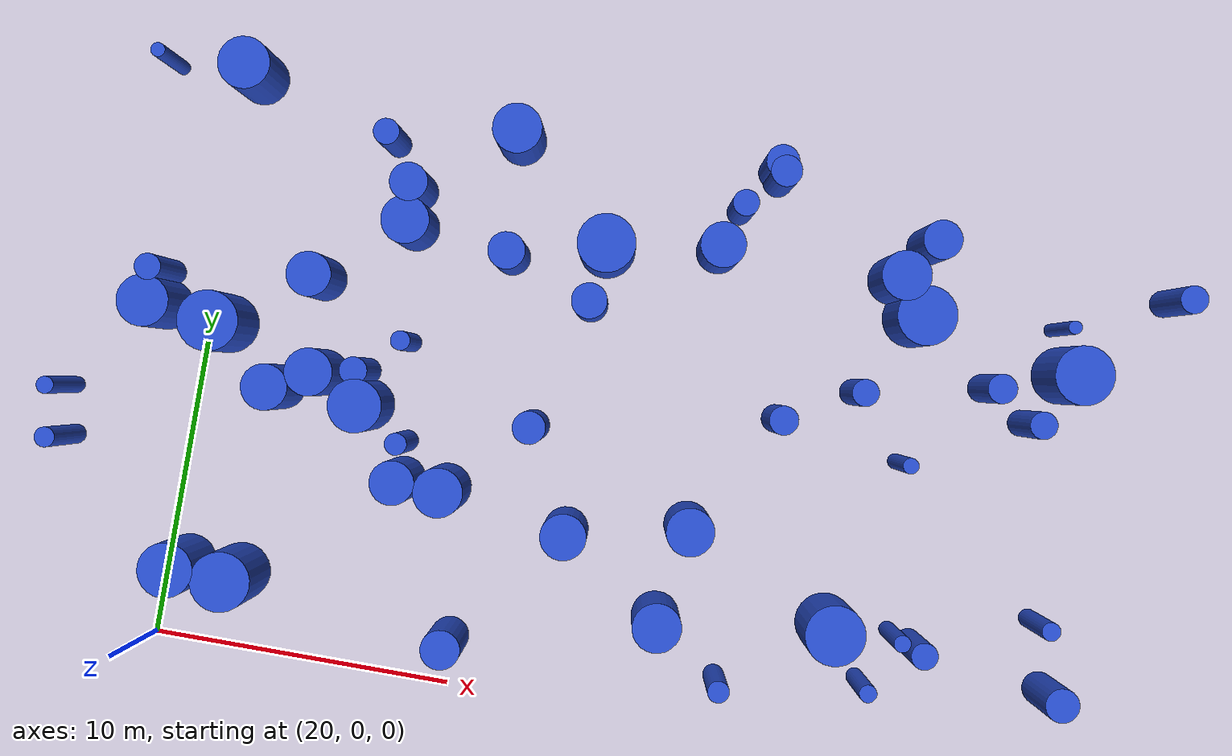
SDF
<sdf version="1.7">
 <world name="default">
  <model name="6">
   <static>1</static>
   <link name="link">
    <inertial>
     <mass>2</mass>
     <inertia>
      <ixx>6.03936</ixx>
      <ixy>0</ixy>
      <ixz>0</ixz>
      <iyy>6.03936</iyy>
      <iyz>0</iyz>
      <izz>0.0787145</izz>
     </inertia>
    </inertial>
    <collision name="collision">
     <geometry><cylinder><length>6</length><radius>0.280561</radius></cylinder></geometry>
     <surface><contact><collide_without_contact>1</collide_without_contact></contact></surface>
    </collision>
    <visual name="visual">
     <geometry><cylinder><length>6</length><radius>0.280561</radius></cylinder></geometry>
     <material>
      <script><uri>file://media/materials/scripts/gazebo.material</uri><name>Gazebo/Blue</name></script>
     </material>
    </visual>
    <gravity>0</gravity>
   </link>
   <pose>44.4541 4.37326 3 0 -0 0</pose>
  </model>
  <model name="7">
   <static>1</static>
   <link name="link">
    <inertial>
     <mass>2</mass>
     <inertia><ixx>6.47364</ixx><ixy>0</ixy><ixz>0</ixz><iyy>6.47364</iyy><iyz>0</iyz><izz>0.947284</izz></inertia>
    </inertial>
    <collision name="collision">
     <geometry><cylinder><length>6</length><radius>0.973285</radius></cylinder></geometry>
     <surface><contact><collide_without_contact>1</collide_without_contact></contact></surface>
    </collision>
    <visual name="visual">
     <geometry><cylinder><length>6</length><radius>0.973285</radius></cylinder></geometry>
     <material>
      <script><uri>file://media/materials/scripts/gazebo.material</uri><name>Gazebo/Blue</name></script>
     </material>
    </visual>
    <gravity>0</gravity>
   </link>
   <pose>48.7457 13.9013 3 0 -0 0</pose>
  </model>
  <model name="11">
   <static>1</static>
   <link name="link">
    <inertial>
     <mass>2</mass>
     <inertia><ixx>6.40175</ixx><ixy>0</ixy><ixz>0</ixz><iyy>6.40175</iyy><iyz>0</iyz><izz>0.803492</izz></inertia>
    </inertial>
    <collision name="collision">
     <geometry><cylinder><length>6</length><radius>0.896377</radius></cylinder></geometry>
     <surface><contact><collide_without_contact>1</collide_without_contact></contact></surface>
    </collision>
    <visual name="visual">
     <geometry><cylinder><length>6</length><radius>0.896377</radius></cylinder></geometry>
     <material>
      <script><uri>file://media/materials/scripts/gazebo.material</uri><name>Gazebo/Blue</name></script>
     </material>
    </visual>
    <gravity>0</gravity>
   </link>
   <pose>20.6606 2.5794 3 0 -0 0</pose>
  </model>
  <model name="13">
   <static>1</static>
   <link name="link">
    <inertial>
     <mass>2</mass>
     <inertia><ixx>6.10399</ixx><ixy>0</ixy><ixz>0</ixz><iyy>6.10399</iyy><iyz>0</iyz><izz>0.207976</izz></inertia>
    </inertial>
    <collision name="collision">
     <geometry><cylinder><length>6</length><radius>0.456044</radius></cylinder></geometry>
     <surface><contact><collide_without_contact>1</collide_without_contact></contact></surface>
    </collision>
    <visual name="visual">
     <geometry><cylinder><length>6</length><radius>0.456044</radius></cylinder></geometry>
     <material>
      <script><uri>file://media/materials/scripts/gazebo.material</uri><name>Gazebo/Blue</name></script>
     </material>
    </visual>
    <gravity>0</gravity>
   </link>
   <pose>51.7868 16.9186 3 0 -0 0</pose>
  </model>
  <model name="25">
   <static>1</static>
   <link name="link">
    <inertial>
     <mass>2</mass>
     <inertia><ixx>6.38374</ixx><ixy>0</ixy><ixz>0</ixz><iyy>6.38374</iyy><iyz>0</iyz><izz>0.767485</izz></inertia>
    </inertial>
    <collision name="collision">
     <geometry><cylinder><length>6</length><radius>0.876062</radius></cylinder></geometry>
     <surface><contact><collide_without_contact>1</collide_without_contact></contact></surface>
    </collision>
    <visual name="visual">
     <geometry><cylinder><length>6</length><radius>0.876062</radius></cylinder></geometry>
     <material>
      <script><uri>file://media/materials/scripts/gazebo.material</uri><name>Gazebo/Blue</name></script>
     </material>
    </visual>
    <gravity>0</gravity>
   </link>
   <pose>25.7538 8.85397 3 0 -0 0</pose>
  </model>
  <model name="27">
   <static>1</static>
   <link name="link">
    <inertial>
     <mass>2</mass>
     <inertia>
      <ixx>6.03934</ixx>
      <ixy>0</ixy>
      <ixz>0</ixz>
      <iyy>6.03934</iyy>
      <iyz>0</iyz>
      <izz>0.0786724</izz>
     </inertia>
    </inertial>
    <collision name="collision">
     <geometry><cylinder><length>6</length><radius>0.280486</radius></cylinder></geometry>
     <surface><contact><collide_without_contact>1</collide_without_contact></contact></surface>
    </collision>
    <visual name="visual">
     <geometry><cylinder><length>6</length><radius>0.280486</radius></cylinder></geometry>
     <material>
      <script><uri>file://media/materials/scripts/gazebo.material</uri><name>Gazebo/Blue</name></script>
     </material>
    </visual>
    <gravity>0</gravity>
   </link>
   <pose>15.8342 7.79594 3 0 -0 0</pose>
  </model>
  <model name="30">
   <static>1</static>
   <link name="link">
    <inertial>
     <mass>2</mass>
     <inertia><ixx>6.13157</ixx><ixy>0</ixy><ixz>0</ixz><iyy>6.13157</iyy><iyz>0</iyz><izz>0.263136</izz></inertia>
    </inertial>
    <collision name="collision">
     <geometry><cylinder><length>6</length><radius>0.512968</radius></cylinder></geometry>
     <surface><contact><collide_without_contact>1</collide_without_contact></contact></surface>
    </collision>
    <visual name="visual">
     <geometry><cylinder><length>6</length><radius>0.512968</radius></cylinder></geometry>
     <material>
      <script><uri>file://media/materials/scripts/gazebo.material</uri><name>Gazebo/Blue</name></script>
     </material>
    </visual>
    <gravity>0</gravity>
   </link>
   <pose>38.1472 18.7277 3 0 -0 0</pose>
  </model>
  <model name="43">
   <static>1</static>
   <link name="link">
    <inertial>
     <mass>2</mass>
     <inertia><ixx>6.09019</ixx><ixy>0</ixy><ixz>0</ixz><iyy>6.09019</iyy><iyz>0</iyz><izz>0.180376</izz></inertia>
    </inertial>
    <collision name="collision">
     <geometry><cylinder><length>6</length><radius>0.424707</radius></cylinder></geometry>
     <surface><contact><collide_without_contact>1</collide_without_contact></contact></surface>
    </collision>
    <visual name="visual">
     <geometry><cylinder><length>6</length><radius>0.424707</radius></cylinder></geometry>
     <material>
      <script><uri>file://media/materials/scripts/gazebo.material</uri><name>Gazebo/Blue</name></script>
     </material>
    </visual>
    <gravity>0</gravity>
   </link>
   <pose>25.2338 17.7403 3 0 -0 0</pose>
  </model>
  <model name="44">
   <static>1</static>
   <link name="link">
    <inertial>
     <mass>2</mass>
     <inertia><ixx>6.09258</ixx><ixy>0</ixy><ixz>0</ixz><iyy>6.09258</iyy><iyz>0</iyz><izz>0.18516</izz></inertia>
    </inertial>
    <collision name="collision">
     <geometry><cylinder><length>6</length><radius>0.430302</radius></cylinder></geometry>
     <surface><contact><collide_without_contact>1</collide_without_contact></contact></surface>
    </collision>
    <visual name="visual">
     <geometry><cylinder><length>6</length><radius>0.430302</radius></cylinder></geometry>
     <material>
      <script><uri>file://media/materials/scripts/gazebo.material</uri><name>Gazebo/Blue</name></script>
     </material>
    </visual>
    <gravity>0</gravity>
   </link>
   <pose>37.0413 17.4916 3 0 -0 0</pose>
  </model>
  <model name="52">
   <static>1</static>
   <link name="link">
    <inertial>
     <mass>2</mass>
     <inertia><ixx>6.10109</ixx><ixy>0</ixy><ixz>0</ixz><iyy>6.10109</iyy><iyz>0</iyz><izz>0.202182</izz></inertia>
    </inertial>
    <collision name="collision">
     <geometry><cylinder><length>6</length><radius>0.449647</radius></cylinder></geometry>
     <surface><contact><collide_without_contact>1</collide_without_contact></contact></surface>
    </collision>
    <visual name="visual">
     <geometry><cylinder><length>6</length><radius>0.449647</radius></cylinder></geometry>
     <material>
      <script><uri>file://media/materials/scripts/gazebo.material</uri><name>Gazebo/Blue</name></script>
     </material>
    </visual>
    <gravity>0</gravity>
   </link>
   <pose>47.719 12.0839 3 0 -0 0</pose>
  </model>
  <model name="53">
   <static>1</static>
   <link name="link">
    <inertial>
     <mass>2</mass>
     <inertia><ixx>6.36119</ixx><ixy>0</ixy><ixz>0</ixz><iyy>6.36119</iyy><iyz>0</iyz><izz>0.722384</izz></inertia>
    </inertial>
    <collision name="collision">
     <geometry><cylinder><length>6</length><radius>0.849932</radius></cylinder></geometry>
     <surface><contact><collide_without_contact>1</collide_without_contact></contact></surface>
    </collision>
    <visual name="visual">
     <geometry><cylinder><length>6</length><radius>0.849932</radius></cylinder></geometry>
     <material>
      <script><uri>file://media/materials/scripts/gazebo.material</uri><name>Gazebo/Blue</name></script>
     </material>
    </visual>
    <gravity>0</gravity>
   </link>
   <pose>20.3305 19.1279 3 0 -0 0</pose>
  </model>
  <model name="68">
   <static>1</static>
   <link name="link">
    <inertial>
     <mass>2</mass>
     <inertia>
      <ixx>6.02714</ixx>
      <ixy>0</ixy>
      <ixz>0</ixz>
      <iyy>6.02714</iyy>
      <iyz>0</iyz>
      <izz>0.0542715</izz>
     </inertia>
    </inertial>
    <collision name="collision">
     <geometry><cylinder><length>6</length><radius>0.232962</radius></cylinder></geometry>
     <surface><contact><collide_without_contact>1</collide_without_contact></contact></surface>
    </collision>
    <visual name="visual">
     <geometry><cylinder><length>6</length><radius>0.232962</radius></cylinder></geometry>
     <material>
      <script><uri>file://media/materials/scripts/gazebo.material</uri><name>Gazebo/Blue</name></script>
     </material>
    </visual>
    <gravity>0</gravity>
   </link>
   <pose>17.5427 19.052 3 0 -0 0</pose>
  </model>
  <model name="74">
   <static>1</static>
   <link name="link">
    <inertial>
     <mass>2</mass>
     <inertia><ixx>6.14646</ixx><ixy>0</ixy><ixz>0</ixz><iyy>6.14646</iyy><iyz>0</iyz><izz>0.292928</izz></inertia>
    </inertial>
    <collision name="collision">
     <geometry><cylinder><length>6</length><radius>0.541228</radius></cylinder></geometry>
     <surface><contact><collide_without_contact>1</collide_without_contact></contact></surface>
    </collision>
    <visual name="visual">
     <geometry><cylinder><length>6</length><radius>0.541228</radius></cylinder></geometry>
     <material>
      <script><uri>file://media/materials/scripts/gazebo.material</uri><name>Gazebo/Blue</name></script>
     </material>
    </visual>
    <gravity>0</gravity>
   </link>
   <pose>31.4047 9.13593 3 0 -0 0</pose>
  </model>
  <model name="78">
   <static>1</static>
   <link name="link">
    <inertial>
     <mass>2</mass>
     <inertia><ixx>6.15615</ixx><ixy>0</ixy><ixz>0</ixz><iyy>6.15615</iyy><iyz>0</iyz><izz>0.312297</izz></inertia>
    </inertial>
    <collision name="collision">
     <geometry><cylinder><length>6</length><radius>0.558835</radius></cylinder></geometry>
     <surface><contact><collide_without_contact>1</collide_without_contact></contact></surface>
    </collision>
    <visual name="visual">
     <geometry><cylinder><length>6</length><radius>0.558835</radius></cylinder></geometry>
     <material>
      <script><uri>file://media/materials/scripts/gazebo.material</uri><name>Gazebo/Blue</name></script>
     </material>
    </visual>
    <gravity>0</gravity>
   </link>
   <pose>49.8746 3.30067 3 0 -0 0</pose>
  </model>
  <model name="79">
   <static>1</static>
   <link name="link">
    <inertial>
     <mass>2</mass>
     <inertia><ixx>6.14495</ixx><ixy>0</ixy><ixz>0</ixz><iyy>6.14495</iyy><iyz>0</iyz><izz>0.289907</izz></inertia>
    </inertial>
    <collision name="collision">
     <geometry><cylinder><length>6</length><radius>0.53843</radius></cylinder></geometry>
     <surface><contact><collide_without_contact>1</collide_without_contact></contact></surface>
    </collision>
    <visual name="visual">
     <geometry><cylinder><length>6</length><radius>0.53843</radius></cylinder></geometry>
     <material>
      <script><uri>file://media/materials/scripts/gazebo.material</uri><name>Gazebo/Blue</name></script>
     </material>
    </visual>
    <gravity>0</gravity>
   </link>
   <pose>37.9749 19.0124 3 0 -0 0</pose>
  </model>
  <model name="84">
   <static>1</static>
   <link name="link">
    <inertial>
     <mass>2</mass>
     <inertia><ixx>6.06422</ixx><ixy>0</ixy><ixz>0</ixz><iyy>6.06422</iyy><iyz>0</iyz><izz>0.128433</izz></inertia>
    </inertial>
    <collision name="collision">
     <geometry><cylinder><length>6</length><radius>0.358376</radius></cylinder></geometry>
     <surface><contact><collide_without_contact>1</collide_without_contact></contact></surface>
    </collision>
    <visual name="visual">
     <geometry><cylinder><length>6</length><radius>0.358376</radius></cylinder></geometry>
     <material>
      <script><uri>file://media/materials/scripts/gazebo.material</uri><name>Gazebo/Blue</name></script>
     </material>
    </visual>
    <gravity>0</gravity>
   </link>
   <pose>38.8906 1.8224 3 0 -0 0</pose>
  </model>
  <model name="90">
   <static>1</static>
   <link name="link">
    <inertial>
     <mass>2</mass>
     <inertia><ixx>6.05078</ixx><ixy>0</ixy><ixz>0</ixz><iyy>6.05078</iyy><iyz>0</iyz><izz>0.101566</izz></inertia>
    </inertial>
    <collision name="collision">
     <geometry><cylinder><length>6</length><radius>0.318694</radius></cylinder></geometry>
     <surface><contact><collide_without_contact>1</collide_without_contact></contact></surface>
    </collision>
    <visual name="visual">
     <geometry><cylinder><length>6</length><radius>0.318694</radius></cylinder></geometry>
     <material>
      <script><uri>file://media/materials/scripts/gazebo.material</uri><name>Gazebo/Blue</name></script>
     </material>
    </visual>
    <gravity>0</gravity>
   </link>
   <pose>26.8432 11.1855 3 0 -0 0</pose>
  </model>
  <model name="94">
   <static>1</static>
   <link name="link">
    <inertial>
     <mass>2</mass>
     <inertia><ixx>6.05397</ixx><ixy>0</ixy><ixz>0</ixz><iyy>6.05397</iyy><iyz>0</iyz><izz>0.107946</izz></inertia>
    </inertial>
    <collision name="collision">
     <geometry><cylinder><length>6</length><radius>0.328552</radius></cylinder></geometry>
     <surface><contact><collide_without_contact>1</collide_without_contact></contact></surface>
    </collision>
    <visual name="visual">
     <geometry><cylinder><length>6</length><radius>0.328552</radius></cylinder></geometry>
     <material>
      <script><uri>file://media/materials/scripts/gazebo.material</uri><name>Gazebo/Blue</name></script>
     </material>
    </visual>
    <gravity>0</gravity>
   </link>
   <pose>16.1127 6.14078 3 0 -0 0</pose>
  </model>
  <model name="102">
   <static>1</static>
   <link name="link">
    <inertial>
     <mass>2</mass>
     <inertia><ixx>6.09779</ixx><ixy>0</ixy><ixz>0</ixz><iyy>6.09779</iyy><iyz>0</iyz><izz>0.19558</izz></inertia>
    </inertial>
    <collision name="collision">
     <geometry><cylinder><length>6</length><radius>0.442244</radius></cylinder></geometry>
     <surface><contact><collide_without_contact>1</collide_without_contact></contact></surface>
    </collision>
    <visual name="visual">
     <geometry><cylinder><length>6</length><radius>0.442244</radius></cylinder></geometry>
     <material>
      <script><uri>file://media/materials/scripts/gazebo.material</uri><name>Gazebo/Blue</name></script>
     </material>
    </visual>
    <gravity>0</gravity>
   </link>
   <pose>41.8886 12.1273 3 0 -0 0</pose>
  </model>
  <model name="106">
   <static>1</static>
   <link name="link">
    <inertial>
     <mass>2</mass>
     <inertia><ixx>6.48942</ixx><ixy>0</ixy><ixz>0</ixz><iyy>6.48942</iyy><iyz>0</iyz><izz>0.978843</izz></inertia>
    </inertial>
    <collision name="collision">
     <geometry><cylinder><length>6</length><radius>0.989365</radius></cylinder></geometry>
     <surface><contact><collide_without_contact>1</collide_without_contact></contact></surface>
    </collision>
    <visual name="visual">
     <geometry><cylinder><length>6</length><radius>0.989365</radius></cylinder></geometry>
     <material>
      <script><uri>file://media/materials/scripts/gazebo.material</uri><name>Gazebo/Blue</name></script>
     </material>
    </visual>
    <gravity>0</gravity>
   </link>
   <pose>42.2898 4.24967 3 0 -0 0</pose>
  </model>
  <model name="109">
   <static>1</static>
   <link name="link">
    <inertial>
     <mass>2</mass>
     <inertia><ixx>6.11392</ixx><ixy>0</ixy><ixz>0</ixz><iyy>6.11392</iyy><iyz>0</iyz><izz>0.227848</izz></inertia>
    </inertial>
    <collision name="collision">
     <geometry><cylinder><length>6</length><radius>0.477334</radius></cylinder></geometry>
     <surface><contact><collide_without_contact>1</collide_without_contact></contact></surface>
    </collision>
    <visual name="visual">
     <geometry><cylinder><length>6</length><radius>0.477334</radius></cylinder></geometry>
     <material>
      <script><uri>file://media/materials/scripts/gazebo.material</uri><name>Gazebo/Blue</name></script>
     </material>
    </visual>
    <gravity>0</gravity>
   </link>
   <pose>39.4527 10.7929 3 0 -0 0</pose>
  </model>
  <model name="120">
   <static>1</static>
   <link name="link">
    <inertial>
     <mass>2</mass>
     <inertia><ixx>6.04227</ixx><ixy>0</ixy><ixz>0</ixz><iyy>6.04227</iyy><iyz>0</iyz><izz>0.084539</izz></inertia>
    </inertial>
    <collision name="collision">
     <geometry><cylinder><length>6</length><radius>0.290756</radius></cylinder></geometry>
     <surface><contact><collide_without_contact>1</collide_without_contact></contact></surface>
    </collision>
    <visual name="visual">
     <geometry><cylinder><length>6</length><radius>0.290756</radius></cylinder></geometry>
     <material>
      <script><uri>file://media/materials/scripts/gazebo.material</uri><name>Gazebo/Blue</name></script>
     </material>
    </visual>
    <gravity>0</gravity>
   </link>
   <pose>43.6401 2.60213 3 0 -0 0</pose>
  </model>
  <model name="134">
   <static>1</static>
   <link name="link">
    <inertial>
     <mass>2</mass>
     <inertia><ixx>6.10247</ixx><ixy>0</ixy><ixz>0</ixz><iyy>6.10247</iyy><iyz>0</iyz><izz>0.204949</izz></inertia>
    </inertial>
    <collision name="collision">
     <geometry><cylinder><length>6</length><radius>0.452713</radius></cylinder></geometry>
     <surface><contact><collide_without_contact>1</collide_without_contact></contact></surface>
    </collision>
    <visual name="visual">
     <geometry><cylinder><length>6</length><radius>0.452713</radius></cylinder></geometry>
     <material>
      <script><uri>file://media/materials/scripts/gazebo.material</uri><name>Gazebo/Blue</name></script>
     </material>
    </visual>
    <gravity>0</gravity>
   </link>
   <pose>25.5167 9.96358 3 0 -0 0</pose>
  </model>
  <model name="149">
   <static>1</static>
   <link name="link">
    <inertial>
     <mass>2</mass>
     <inertia><ixx>6.32772</ixx><ixy>0</ixy><ixz>0</ixz><iyy>6.32772</iyy><iyz>0</iyz><izz>0.655446</izz></inertia>
    </inertial>
    <collision name="collision">
     <geometry><cylinder><length>6</length><radius>0.809596</radius></cylinder></geometry>
     <surface><contact><collide_without_contact>1</collide_without_contact></contact></surface>
    </collision>
    <visual name="visual">
     <geometry><cylinder><length>6</length><radius>0.809596</radius></cylinder></geometry>
     <material>
      <script><uri>file://media/materials/scripts/gazebo.material</uri><name>Gazebo/Blue</name></script>
     </material>
    </visual>
    <gravity>0</gravity>
   </link>
   <pose>29.3649 18.5769 3 0 -0 0</pose>
  </model>
  <model name="154">
   <static>1</static>
   <link name="link">
    <inertial>
     <mass>2</mass>
     <inertia><ixx>6.19478</ixx><ixy>0</ixy><ixz>0</ixz><iyy>6.19478</iyy><iyz>0</iyz><izz>0.389561</izz></inertia>
    </inertial>
    <collision name="collision">
     <geometry><cylinder><length>6</length><radius>0.624148</radius></cylinder></geometry>
     <surface><contact><collide_without_contact>1</collide_without_contact></contact></surface>
    </collision>
    <visual name="visual">
     <geometry><cylinder><length>6</length><radius>0.624148</radius></cylinder></geometry>
     <material>
      <script><uri>file://media/materials/scripts/gazebo.material</uri><name>Gazebo/Blue</name></script>
     </material>
    </visual>
    <gravity>0</gravity>
   </link>
   <pose>26.218 16.2749 3 0 -0 0</pose>
  </model>
  <model name="161">
   <static>1</static>
   <link name="link">
    <inertial>
     <mass>2</mass>
     <inertia><ixx>6.28558</ixx><ixy>0</ixy><ixz>0</ixz><iyy>6.28558</iyy><iyz>0</iyz><izz>0.571168</izz></inertia>
    </inertial>
    <collision name="collision">
     <geometry><cylinder><length>6</length><radius>0.755757</radius></cylinder></geometry>
     <surface><contact><collide_without_contact>1</collide_without_contact></contact></surface>
    </collision>
    <visual name="visual">
     <geometry><cylinder><length>6</length><radius>0.755757</radius></cylinder></geometry>
     <material>
      <script><uri>file://media/materials/scripts/gazebo.material</uri><name>Gazebo/Blue</name></script>
     </material>
    </visual>
    <gravity>0</gravity>
   </link>
   <pose>33.0988 5.85235 3 0 -0 0</pose>
  </model>
  <model name="163">
   <static>1</static>
   <link name="link">
    <inertial>
     <mass>2</mass>
     <inertia><ixx>6.0243</ixx><ixy>0</ixy><ixz>0</ixz><iyy>6.0243</iyy><iyz>0</iyz><izz>0.0485927</izz></inertia>
    </inertial>
    <collision name="collision">
     <geometry><cylinder><length>6</length><radius>0.220437</radius></cylinder></geometry>
     <surface><contact><collide_without_contact>1</collide_without_contact></contact></surface>
    </collision>
    <visual name="visual">
     <geometry><cylinder><length>6</length><radius>0.220437</radius></cylinder></geometry>
     <material>
      <script><uri>file://media/materials/scripts/gazebo.material</uri><name>Gazebo/Blue</name></script>
     </material>
    </visual>
    <gravity>0</gravity>
   </link>
   <pose>48.1654 15.3705 3 0 -0 0</pose>
  </model>
  <model name="167">
   <static>1</static>
   <link name="link">
    <inertial>
     <mass>2</mass>
     <inertia><ixx>6.30551</ixx><ixy>0</ixy><ixz>0</ixz><iyy>6.30551</iyy><iyz>0</iyz><izz>0.611024</izz></inertia>
    </inertial>
    <collision name="collision">
     <geometry><cylinder><length>6</length><radius>0.78168</radius></cylinder></geometry>
     <surface><contact><collide_without_contact>1</collide_without_contact></contact></surface>
    </collision>
    <visual name="visual">
     <geometry><cylinder><length>6</length><radius>0.78168</radius></cylinder></geometry>
     <material>
      <script><uri>file://media/materials/scripts/gazebo.material</uri><name>Gazebo/Blue</name></script>
     </material>
    </visual>
    <gravity>0</gravity>
   </link>
   <pose>24.096 9.67119 3 0 -0 0</pose>
  </model>
  <model name="176">
   <static>1</static>
   <link name="link">
    <inertial>
     <mass>2</mass>
     <inertia><ixx>6.18586</ixx><ixy>0</ixy><ixz>0</ixz><iyy>6.18586</iyy><iyz>0</iyz><izz>0.371728</izz></inertia>
    </inertial>
    <collision name="collision">
     <geometry><cylinder><length>6</length><radius>0.609695</radius></cylinder></geometry>
     <surface><contact><collide_without_contact>1</collide_without_contact></contact></surface>
    </collision>
    <visual name="visual">
     <geometry><cylinder><length>6</length><radius>0.609695</radius></cylinder></geometry>
     <material>
      <script><uri>file://media/materials/scripts/gazebo.material</uri><name>Gazebo/Blue</name></script>
     </material>
    </visual>
    <gravity>0</gravity>
   </link>
   <pose>29.7053 14.638 3 0 -0 0</pose>
  </model>
  <model name="191">
   <static>1</static>
   <link name="link">
    <inertial>
     <mass>2</mass>
     <inertia><ixx>6.32996</ixx><ixy>0</ixy><ixz>0</ixz><iyy>6.32996</iyy><iyz>0</iyz><izz>0.659918</izz></inertia>
    </inertial>
    <collision name="collision">
     <geometry><cylinder><length>6</length><radius>0.812353</radius></cylinder></geometry>
     <surface><contact><collide_without_contact>1</collide_without_contact></contact></surface>
    </collision>
    <visual name="visual">
     <geometry><cylinder><length>6</length><radius>0.812353</radius></cylinder></geometry>
     <material>
      <script><uri>file://media/materials/scripts/gazebo.material</uri><name>Gazebo/Blue</name></script>
     </material>
    </visual>
    <gravity>0</gravity>
   </link>
   <pose>42.541 16.0882 3 0 -0 0</pose>
  </model>
  <model name="192">
   <static>1</static>
   <link name="link">
    <inertial>
     <mass>2</mass>
     <inertia>
      <ixx>6.03425</ixx>
      <ixy>0</ixy>
      <ixz>0</ixz>
      <iyy>6.03425</iyy>
      <iyz>0</iyz>
      <izz>0.0684946</izz>
     </inertia>
    </inertial>
    <collision name="collision">
     <geometry><cylinder><length>6</length><radius>0.261715</radius></cylinder></geometry>
     <surface><contact><collide_without_contact>1</collide_without_contact></contact></surface>
    </collision>
    <visual name="visual">
     <geometry><cylinder><length>6</length><radius>0.261715</radius></cylinder></geometry>
     <material>
      <script><uri>file://media/materials/scripts/gazebo.material</uri><name>Gazebo/Blue</name></script>
     </material>
    </visual>
    <gravity>0</gravity>
   </link>
   <pose>43.7318 10.0597 3 0 -0 0</pose>
  </model>
  <model name="195">
   <static>1</static>
   <link name="link">
    <inertial>
     <mass>2</mass>
     <inertia><ixx>6.20843</ixx><ixy>0</ixy><ixz>0</ixz><iyy>6.20843</iyy><iyz>0</iyz><izz>0.416855</izz></inertia>
    </inertial>
    <collision name="collision">
     <geometry><cylinder><length>6</length><radius>0.645643</radius></cylinder></geometry>
     <surface><contact><collide_without_contact>1</collide_without_contact></contact></surface>
    </collision>
    <visual name="visual">
     <geometry><cylinder><length>6</length><radius>0.645643</radius></cylinder></geometry>
     <material>
      <script><uri>file://media/materials/scripts/gazebo.material</uri><name>Gazebo/Blue</name></script>
     </material>
    </visual>
    <gravity>0</gravity>
   </link>
   <pose>29.8276 1.58999 3 0 -0 0</pose>
  </model>
  <model name="196">
   <static>1</static>
   <link name="link">
    <inertial>
     <mass>2</mass>
     <inertia><ixx>6.09562</ixx><ixy>0</ixy><ixz>0</ixz><iyy>6.09562</iyy><iyz>0</iyz><izz>0.191243</izz></inertia>
    </inertial>
    <collision name="collision">
     <geometry><cylinder><length>6</length><radius>0.437313</radius></cylinder></geometry>
     <surface><contact><collide_without_contact>1</collide_without_contact></contact></surface>
    </collision>
    <visual name="visual">
     <geometry><cylinder><length>6</length><radius>0.437313</radius></cylinder></geometry>
     <material>
      <script><uri>file://media/materials/scripts/gazebo.material</uri><name>Gazebo/Blue</name></script>
     </material>
    </visual>
    <gravity>0</gravity>
   </link>
   <pose>45.2293 4.09525 3 0 -0 0</pose>
  </model>
  <model name="201">
   <static>1</static>
   <link name="link">
    <inertial>
     <mass>2</mass>
     <inertia><ixx>6.31191</ixx><ixy>0</ixy><ixz>0</ixz><iyy>6.31191</iyy><iyz>0</iyz><izz>0.623826</izz></inertia>
    </inertial>
    <collision name="collision">
     <geometry><cylinder><length>6</length><radius>0.789827</radius></cylinder></geometry>
     <surface><contact><collide_without_contact>1</collide_without_contact></contact></surface>
    </collision>
    <visual name="visual">
     <geometry><cylinder><length>6</length><radius>0.789827</radius></cylinder></geometry>
     <material>
      <script><uri>file://media/materials/scripts/gazebo.material</uri><name>Gazebo/Blue</name></script>
     </material>
    </visual>
    <gravity>0</gravity>
   </link>
   <pose>37.1133 6.71903 3 0 -0 0</pose>
  </model>
  <model name="202">
   <static>1</static>
   <link name="link">
    <inertial>
     <mass>2</mass>
     <inertia><ixx>6.26535</ixx><ixy>0</ixy><ixz>0</ixz><iyy>6.26535</iyy><iyz>0</iyz><izz>0.530693</izz></inertia>
    </inertial>
    <collision name="collision">
     <geometry><cylinder><length>6</length><radius>0.728487</radius></cylinder></geometry>
     <surface><contact><collide_without_contact>1</collide_without_contact></contact></surface>
    </collision>
    <visual name="visual">
     <geometry><cylinder><length>6</length><radius>0.728487</radius></cylinder></geometry>
     <material>
      <script><uri>file://media/materials/scripts/gazebo.material</uri><name>Gazebo/Blue</name></script>
     </material>
    </visual>
    <gravity>0</gravity>
   </link>
   <pose>23.5615 12.7886 3 0 -0 0</pose>
  </model>
  <model name="204">
   <static>1</static>
   <link name="link">
    <inertial>
     <mass>2</mass>
     <inertia><ixx>6.09222</ixx><ixy>0</ixy><ixz>0</ixz><iyy>6.09222</iyy><iyz>0</iyz><izz>0.18444</izz></inertia>
    </inertial>
    <collision name="collision">
     <geometry><cylinder><length>6</length><radius>0.429465</radius></cylinder></geometry>
     <surface><contact><collide_without_contact>1</collide_without_contact></contact></surface>
    </collision>
    <visual name="visual">
     <geometry><cylinder><length>6</length><radius>0.429465</radius></cylinder></geometry>
     <material>
      <script><uri>file://media/materials/scripts/gazebo.material</uri><name>Gazebo/Blue</name></script>
     </material>
    </visual>
    <gravity>0</gravity>
   </link>
   <pose>18.4205 12.1239 3 0 -0 0</pose>
  </model>
  <model name="208">
   <static>1</static>
   <link name="link">
    <inertial>
     <mass>2</mass>
     <inertia><ixx>6.28619</ixx><ixy>0</ixy><ixz>0</ixz><iyy>6.28619</iyy><iyz>0</iyz><izz>0.572382</izz></inertia>
    </inertial>
    <collision name="collision">
     <geometry><cylinder><length>6</length><radius>0.756559</radius></cylinder></geometry>
     <surface><contact><collide_without_contact>1</collide_without_contact></contact></surface>
    </collision>
    <visual name="visual">
     <geometry><cylinder><length>6</length><radius>0.756559</radius></cylinder></geometry>
     <material>
      <script><uri>file://media/materials/scripts/gazebo.material</uri><name>Gazebo/Blue</name></script>
     </material>
    </visual>
    <gravity>0</gravity>
   </link>
   <pose>22.7794 8.95053 3 0 -0 0</pose>
  </model>
  <model name="209">
   <static>1</static>
   <link name="link">
    <inertial>
     <mass>2</mass>
     <inertia><ixx>6.32641</ixx><ixy>0</ixy><ixz>0</ixz><iyy>6.32641</iyy><iyz>0</iyz><izz>0.652821</izz></inertia>
    </inertial>
    <collision name="collision">
     <geometry><cylinder><length>6</length><radius>0.807973</radius></cylinder></geometry>
     <surface><contact><collide_without_contact>1</collide_without_contact></contact></surface>
    </collision>
    <visual name="visual">
     <geometry><cylinder><length>6</length><radius>0.807973</radius></cylinder></geometry>
     <material>
      <script><uri>file://media/materials/scripts/gazebo.material</uri><name>Gazebo/Blue</name></script>
     </material>
    </visual>
    <gravity>0</gravity>
   </link>
   <pose>36.583 3.49403 3 0 -0 0</pose>
  </model>
  <model name="213">
   <static>1</static>
   <link name="link">
    <inertial>
     <mass>2</mass>
     <inertia><ixx>6.17096</ixx><ixy>0</ixy><ixz>0</ixz><iyy>6.17096</iyy><iyz>0</iyz><izz>0.341912</izz></inertia>
    </inertial>
    <collision name="collision">
     <geometry><cylinder><length>6</length><radius>0.584732</radius></cylinder></geometry>
     <surface><contact><collide_without_contact>1</collide_without_contact></contact></surface>
    </collision>
    <visual name="visual">
     <geometry><cylinder><length>6</length><radius>0.584732</radius></cylinder></geometry>
     <material>
      <script><uri>file://media/materials/scripts/gazebo.material</uri><name>Gazebo/Blue</name></script>
     </material>
    </visual>
    <gravity>0</gravity>
   </link>
   <pose>32.612 13.5045 3 0 -0 0</pose>
  </model>
  <model name="217">
   <static>1</static>
   <link name="link">
    <inertial>
     <mass>2</mass>
     <inertia><ixx>6.26373</ixx><ixy>0</ixy><ixz>0</ixz><iyy>6.26373</iyy><iyz>0</iyz><izz>0.527461</izz></inertia>
    </inertial>
    <collision name="collision">
     <geometry><cylinder><length>6</length><radius>0.726265</radius></cylinder></geometry>
     <surface><contact><collide_without_contact>1</collide_without_contact></contact></surface>
    </collision>
    <visual name="visual">
     <geometry><cylinder><length>6</length><radius>0.726265</radius></cylinder></geometry>
     <material>
      <script><uri>file://media/materials/scripts/gazebo.material</uri><name>Gazebo/Blue</name></script>
     </material>
    </visual>
    <gravity>0</gravity>
   </link>
   <pose>27.3591 6.61416 3 0 -0 0</pose>
  </model>
  <model name="221">
   <static>1</static>
   <link name="link">
    <inertial>
     <mass>2</mass>
     <inertia><ixx>6.47792</ixx><ixy>0</ixy><ixz>0</ixz><iyy>6.47792</iyy><iyz>0</iyz><izz>0.955848</izz></inertia>
    </inertial>
    <collision name="collision">
     <geometry><cylinder><length>6</length><radius>0.977675</radius></cylinder></geometry>
     <surface><contact><collide_without_contact>1</collide_without_contact></contact></surface>
    </collision>
    <visual name="visual">
     <geometry><cylinder><length>6</length><radius>0.977675</radius></cylinder></geometry>
     <material>
      <script><uri>file://media/materials/scripts/gazebo.material</uri><name>Gazebo/Blue</name></script>
     </material>
    </visual>
    <gravity>0</gravity>
   </link>
   <pose>43.4165 14.9298 3 0 -0 0</pose>
  </model>
  <model name="229">
   <static>1</static>
   <link name="link">
    <inertial>
     <mass>2</mass>
     <inertia><ixx>6.35716</ixx><ixy>0</ixy><ixz>0</ixz><iyy>6.35716</iyy><iyz>0</iyz><izz>0.714318</izz></inertia>
    </inertial>
    <collision name="collision">
     <geometry><cylinder><length>6</length><radius>0.845174</radius></cylinder></geometry>
     <surface><contact><collide_without_contact>1</collide_without_contact></contact></surface>
    </collision>
    <visual name="visual">
     <geometry><cylinder><length>6</length><radius>0.845174</radius></cylinder></geometry>
     <material>
      <script><uri>file://media/materials/scripts/gazebo.material</uri><name>Gazebo/Blue</name></script>
     </material>
    </visual>
    <gravity>0</gravity>
   </link>
   <pose>18.4442 11.021 3 0 -0 0</pose>
  </model>
  <model name="242">
   <static>1</static>
   <link name="link">
    <inertial>
     <mass>2</mass>
     <inertia><ixx>6.47775</ixx><ixy>0</ixy><ixz>0</ixz><iyy>6.47775</iyy><iyz>0</iyz><izz>0.955493</izz></inertia>
    </inertial>
    <collision name="collision">
     <geometry><cylinder><length>6</length><radius>0.977493</radius></cylinder></geometry>
     <surface><contact><collide_without_contact>1</collide_without_contact></contact></surface>
    </collision>
    <visual name="visual">
     <geometry><cylinder><length>6</length><radius>0.977493</radius></cylinder></geometry>
     <material>
      <script><uri>file://media/materials/scripts/gazebo.material</uri><name>Gazebo/Blue</name></script>
     </material>
    </visual>
    <gravity>0</gravity>
   </link>
   <pose>22.4659 2.51243 3 0 -0 0</pose>
  </model>
  <model name="244">
   <static>1</static>
   <link name="link">
    <inertial>
     <mass>2</mass>
     <inertia><ixx>6.27756</ixx><ixy>0</ixy><ixz>0</ixz><iyy>6.27756</iyy><iyz>0</iyz><izz>0.555114</izz></inertia>
    </inertial>
    <collision name="collision">
     <geometry><cylinder><length>6</length><radius>0.74506</radius></cylinder></geometry>
     <surface><contact><collide_without_contact>1</collide_without_contact></contact></surface>
    </collision>
    <visual name="visual">
     <geometry><cylinder><length>6</length><radius>0.74506</radius></cylinder></geometry>
     <material>
      <script><uri>file://media/materials/scripts/gazebo.material</uri><name>Gazebo/Blue</name></script>
     </material>
    </visual>
    <gravity>0</gravity>
   </link>
   <pose>36.5541 16.034 3 0 -0 0</pose>
  </model>
  <model name="251">
   <static>1</static>
   <link name="link">
    <inertial>
     <mass>2</mass>
     <inertia><ixx>6.20423</ixx><ixy>0</ixy><ixz>0</ixz><iyy>6.20423</iyy><iyz>0</iyz><izz>0.408451</izz></inertia>
    </inertial>
    <collision name="collision">
     <geometry><cylinder><length>6</length><radius>0.639102</radius></cylinder></geometry>
     <surface><contact><collide_without_contact>1</collide_without_contact></contact></surface>
    </collision>
    <visual name="visual">
     <geometry><cylinder><length>6</length><radius>0.639102</radius></cylinder></geometry>
     <material>
      <script><uri>file://media/materials/scripts/gazebo.material</uri><name>Gazebo/Blue</name></script>
     </material>
    </visual>
    <gravity>0</gravity>
   </link>
   <pose>43.4852 17.4166 3 0 -0 0</pose>
  </model>
  <model name="256">
   <static>1</static>
   <link name="link">
    <inertial>
     <mass>2</mass>
     <inertia><ixx>6.4921</ixx><ixy>0</ixy><ixz>0</ixz><iyy>6.4921</iyy><iyz>0</iyz><izz>0.984207</izz></inertia>
    </inertial>
    <collision name="collision">
     <geometry><cylinder><length>6</length><radius>0.992072</radius></cylinder></geometry>
     <surface><contact><collide_without_contact>1</collide_without_contact></contact></surface>
    </collision>
    <visual name="visual">
     <geometry><cylinder><length>6</length><radius>0.992072</radius></cylinder></geometry>
     <material>
      <script><uri>file://media/materials/scripts/gazebo.material</uri><name>Gazebo/Blue</name></script>
     </material>
    </visual>
    <gravity>0</gravity>
   </link>
   <pose>20.6139 10.7429 3 0 -0 0</pose>
  </model>
  <model name="259">
   <static>1</static>
   <link name="link">
    <inertial>
     <mass>2</mass>
     <inertia><ixx>6.21078</ixx><ixy>0</ixy><ixz>0</ixz><iyy>6.21078</iyy><iyz>0</iyz><izz>0.421563</izz></inertia>
    </inertial>
    <collision name="collision">
     <geometry><cylinder><length>6</length><radius>0.649279</radius></cylinder></geometry>
     <surface><contact><collide_without_contact>1</collide_without_contact></contact></surface>
    </collision>
    <visual name="visual">
     <geometry><cylinder><length>6</length><radius>0.649279</radius></cylinder></geometry>
     <material>
      <script><uri>file://media/materials/scripts/gazebo.material</uri><name>Gazebo/Blue</name></script>
     </material>
    </visual>
    <gravity>0</gravity>
   </link>
   <pose>42.2784 4.41713 3 0 -0 0</pose>
  </model>
  <model name="262">
   <static>1</static>
   <link name="link">
    <inertial>
     <mass>2</mass>
     <inertia><ixx>6.3079</ixx><ixy>0</ixy><ixz>0</ixz><iyy>6.3079</iyy><iyz>0</iyz><izz>0.61581</izz></inertia>
    </inertial>
    <collision name="collision">
     <geometry><cylinder><length>6</length><radius>0.784735</radius></cylinder></geometry>
     <surface><contact><collide_without_contact>1</collide_without_contact></contact></surface>
    </collision>
    <visual name="visual">
     <geometry><cylinder><length>6</length><radius>0.784735</radius></cylinder></geometry>
     <material>
      <script><uri>file://media/materials/scripts/gazebo.material</uri><name>Gazebo/Blue</name></script>
     </material>
    </visual>
    <gravity>0</gravity>
   </link>
   <pose>26.3131 15.0553 3 0 -0 0</pose>
  </model>
  <model name="275">
   <static>1</static>
   <link name="link">
    <inertial>
     <mass>2</mass>
     <inertia><ixx>6.4572</ixx><ixy>0</ixy><ixz>0</ixz><iyy>6.4572</iyy><iyz>0</iyz><izz>0.914391</izz></inertia>
    </inertial>
    <collision name="collision">
     <geometry><cylinder><length>6</length><radius>0.956238</radius></cylinder></geometry>
     <surface><contact><collide_without_contact>1</collide_without_contact></contact></surface>
    </collision>
    <visual name="visual">
     <geometry><cylinder><length>6</length><radius>0.956238</radius></cylinder></geometry>
     <material>
      <script><uri>file://media/materials/scripts/gazebo.material</uri><name>Gazebo/Blue</name></script>
     </material>
    </visual>
    <gravity>0</gravity>
   </link>
   <pose>32.8343 15.4356 3 0 -0 0</pose>
  </model>
  <model name="276">
   <static>1</static>
   <link name="link">
    <inertial>
     <mass>2</mass>
     <inertia><ixx>6.3295</ixx><ixy>0</ixy><ixz>0</ixz><iyy>6.3295</iyy><iyz>0</iyz><izz>0.658995</izz></inertia>
    </inertial>
    <collision name="collision">
     <geometry><cylinder><length>6</length><radius>0.811785</radius></cylinder></geometry>
     <surface><contact><collide_without_contact>1</collide_without_contact></contact></surface>
    </collision>
    <visual name="visual">
     <geometry><cylinder><length>6</length><radius>0.811785</radius></cylinder></geometry>
     <material>
      <script><uri>file://media/materials/scripts/gazebo.material</uri><name>Gazebo/Blue</name></script>
     </material>
    </visual>
    <gravity>0</gravity>
   </link>
   <pose>28.8734 6.55812 3 0 -0 0</pose>
  </model>
  <model name="278">
   <static>1</static>
   <link name="link">
    <inertial>
     <mass>2</mass>
     <inertia>
      <ixx>6.04718</ixx>
      <ixy>0</ixy>
      <ixz>0</ixz>
      <iyy>6.04718</iyy>
      <iyz>0</iyz>
      <izz>0.0943503</izz>
     </inertia>
    </inertial>
    <collision name="collision">
     <geometry><cylinder><length>6</length><radius>0.307165</radius></cylinder></geometry>
     <surface><contact><collide_without_contact>1</collide_without_contact></contact></surface>
    </collision>
    <visual name="visual">
     <geometry><cylinder><length>6</length><radius>0.307165</radius></cylinder></geometry>
     <material>
      <script><uri>file://media/materials/scripts/gazebo.material</uri><name>Gazebo/Blue</name></script>
     </material>
    </visual>
    <gravity>0</gravity>
   </link>
   <pose>49.101 5.58857 3 0 -0 0</pose>
  </model>
  <model name="282">
   <static>1</static>
   <link name="link">
    <inertial>
     <mass>2</mass>
     <inertia><ixx>6.06526</ixx><ixy>0</ixy><ixz>0</ixz><iyy>6.06526</iyy><iyz>0</iyz><izz>0.130526</izz></inertia>
    </inertial>
    <collision name="collision">
     <geometry><cylinder><length>6</length><radius>0.361284</radius></cylinder></geometry>
     <surface><contact><collide_without_contact>1</collide_without_contact></contact></surface>
    </collision>
    <visual name="visual">
     <geometry><cylinder><length>6</length><radius>0.361284</radius></cylinder></geometry>
     <material>
      <script><uri>file://media/materials/scripts/gazebo.material</uri><name>Gazebo/Blue</name></script>
     </material>
    </visual>
    <gravity>0</gravity>
   </link>
   <pose>27.2692 7.87142 3 0 -0 0</pose>
  </model>
  <model name="290">
   <static>1</static>
   <link name="link">
    <inertial>
     <mass>2</mass>
     <inertia><ixx>6.11609</ixx><ixy>0</ixy><ixz>0</ixz><iyy>6.11609</iyy><iyz>0</iyz><izz>0.232185</izz></inertia>
    </inertial>
    <collision name="collision">
     <geometry><cylinder><length>6</length><radius>0.481856</radius></cylinder></geometry>
     <surface><contact><collide_without_contact>1</collide_without_contact></contact></surface>
    </collision>
    <visual name="visual">
     <geometry><cylinder><length>6</length><radius>0.481856</radius></cylinder></geometry>
     <material>
      <script><uri>file://media/materials/scripts/gazebo.material</uri><name>Gazebo/Blue</name></script>
     </material>
    </visual>
    <gravity>0</gravity>
   </link>
   <pose>46.2047 13.019 3 0 -0 0</pose>
  </model>
 </world>
</sdf>
